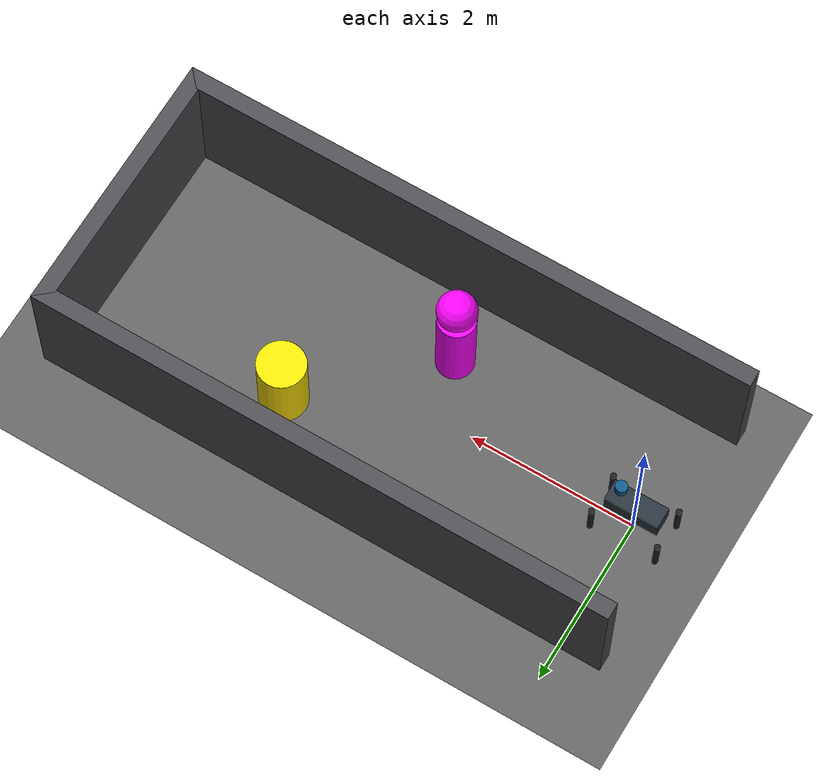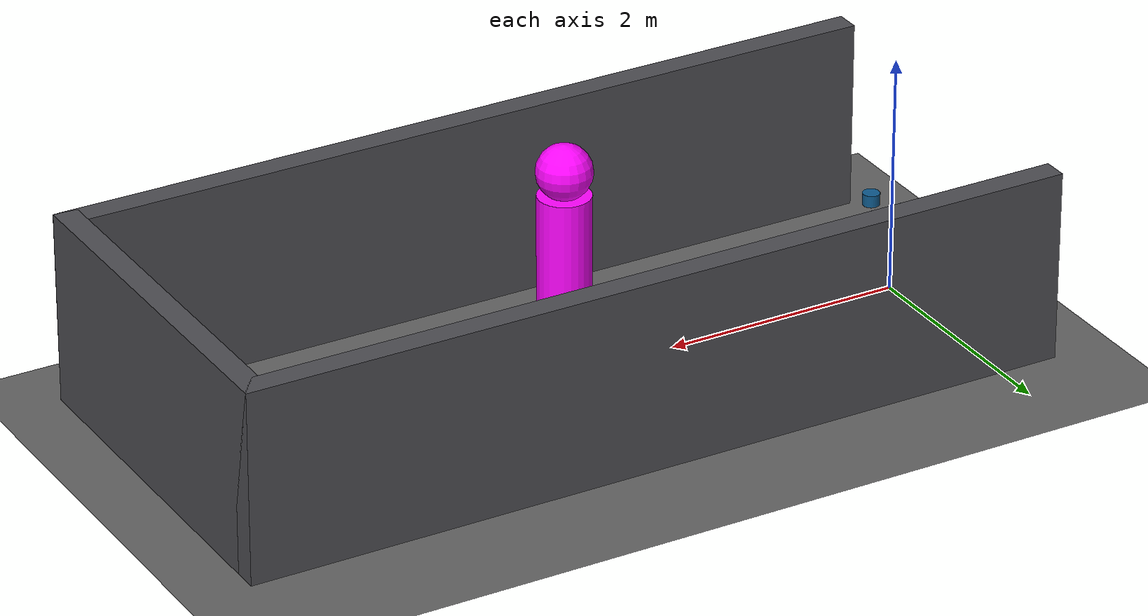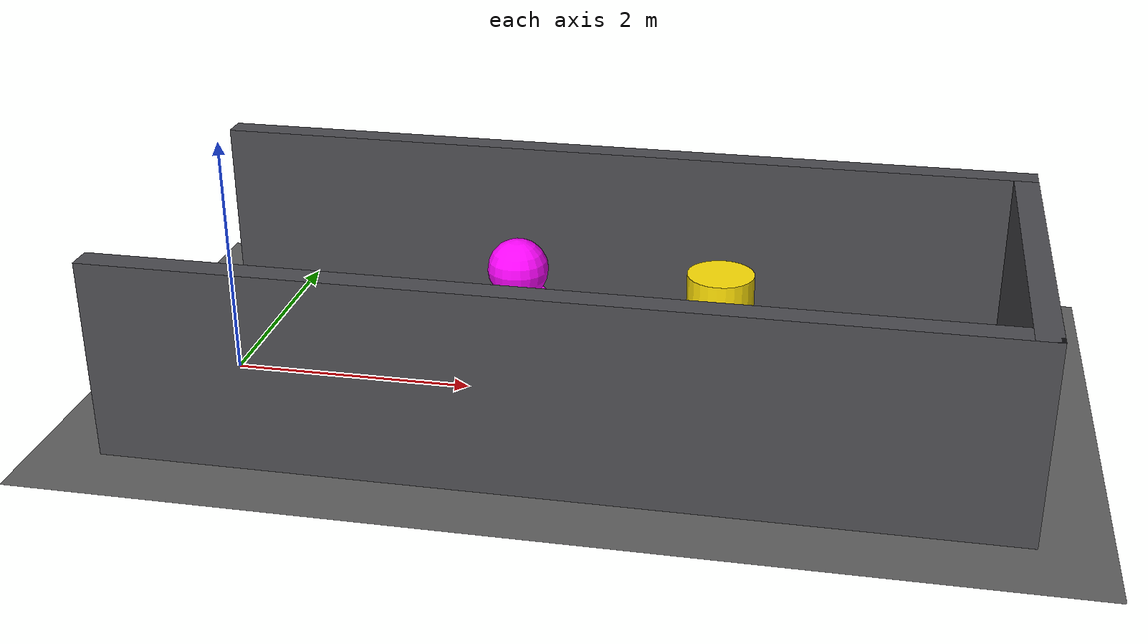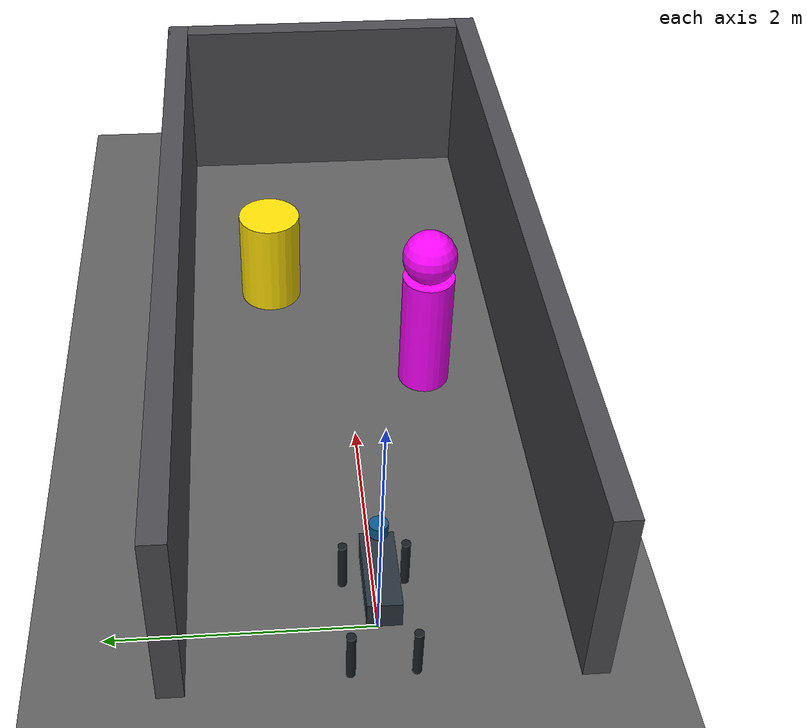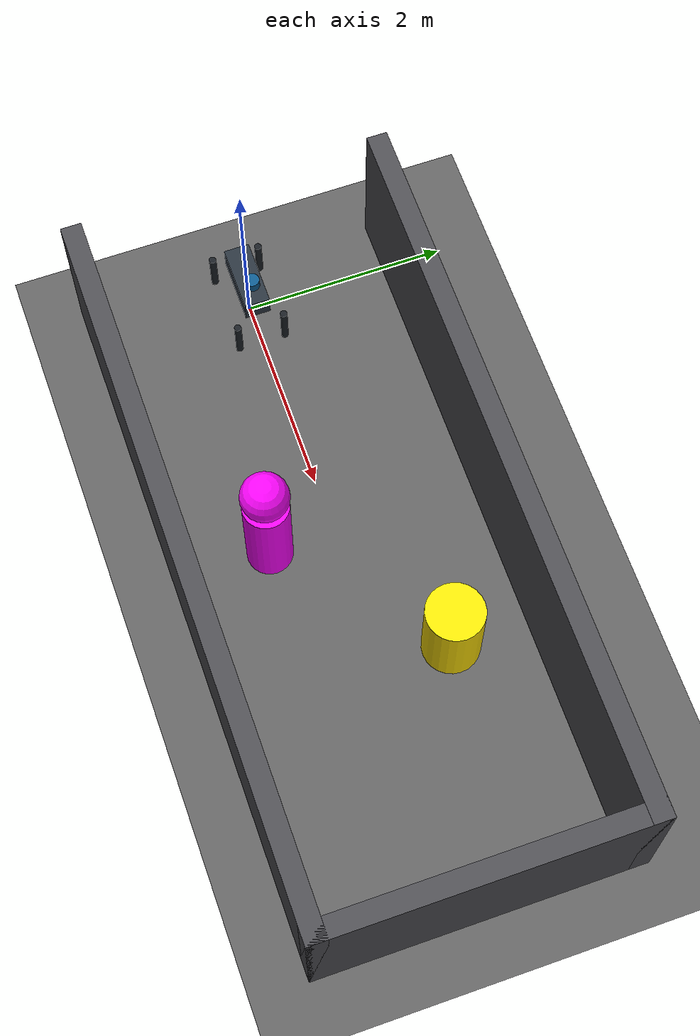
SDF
<?xml version="1.0"?>
<!-- Copyright 2026 Kookmin AI Lab, Apache-2.0 -->
<sdf version="1.8">
  <world name="vision60_disaster_test">
    <physics name="1ms" type="ignored">
      <max_step_size>0.001</max_step_size><real_time_factor>1.0</real_time_factor>
    </physics>
    <plugin filename="ignition-gazebo-physics-system" name="gz::sim::systems::Physics"/>
    <plugin filename="ignition-gazebo-user-commands-system" name="gz::sim::systems::UserCommands"/>
    <plugin filename="ignition-gazebo-scene-broadcaster-system" name="gz::sim::systems::SceneBroadcaster"/>
    <plugin filename="ignition-gazebo-sensors-system" name="gz::sim::systems::Sensors"><render_engine>ogre2</render_engine></plugin>
    <plugin filename="ignition-gazebo-imu-system" name="gz::sim::systems::Imu"/>
    <light type="directional" name="sun">
      <pose>0 0 10 0 0 0</pose><diffuse>0.9 0.9 0.9 1</diffuse>
      <specular>0.2 0.2 0.2 1</specular><direction>-0.5 0.1 -0.9</direction>
    </light>
    <model name="ground_plane">
      <static>true</static><link name="ground">
        <collision name="collision"><geometry><plane><normal>0 0 1</normal><size>30 30</size></plane></geometry></collision>
        <visual name="visual"><geometry><plane><normal>0 0 1</normal><size>30 30</size></plane></geometry><material><diffuse>0.38 0.38 0.38 1</diffuse></material></visual>
      </link>
    </model>
    <model name="corridor_left"><static>true</static><pose>3.0 1.5 0.8 0 0 0</pose><link name="wall">
      <collision name="collision"><geometry><box><size>7.0 0.20 1.6</size></box></geometry></collision>
      <visual name="visual"><geometry><box><size>7.0 0.20 1.6</size></box></geometry><material><diffuse>0.30 0.30 0.32 1</diffuse></material></visual>
    </link></model>
    <model name="corridor_right"><static>true</static><pose>3.0 -1.5 0.8 0 0 0</pose><link name="wall">
      <collision name="collision"><geometry><box><size>7.0 0.20 1.6</size></box></geometry></collision>
      <visual name="visual"><geometry><box><size>7.0 0.20 1.6</size></box></geometry><material><diffuse>0.30 0.30 0.32 1</diffuse></material></visual>
    </link></model>
    <model name="victim_target">
      <static>true</static><pose>2.6 -0.65 0 0 0 0</pose><link name="target">
        <collision name="body_collision"><pose>0 0 0.65 0 0 0</pose><geometry><cylinder><radius>0.22</radius><length>1.10</length></cylinder></geometry></collision>
        <visual name="body_visual"><pose>0 0 0.65 0 0 0</pose><geometry><cylinder><radius>0.22</radius><length>1.10</length></cylinder></geometry><material><ambient>1 0.02 1 1</ambient><diffuse>1 0.02 1 1</diffuse></material></visual>
        <collision name="head_collision"><pose>0 0 1.40 0 0 0</pose><geometry><sphere><radius>0.23</radius></sphere></geometry></collision>
        <visual name="head_visual"><pose>0 0 1.40 0 0 0</pose><geometry><sphere><radius>0.23</radius></sphere></geometry><material><ambient>1 0.02 1 1</ambient><diffuse>1 0.02 1 1</diffuse></material></visual>
      </link>
    </model>
    <model name="hazard_target">
      <static>true</static><pose>4.0 0.65 0.45 0 0 0</pose><link name="target">
        <collision name="collision"><geometry><cylinder><radius>0.28</radius><length>0.90</length></cylinder></geometry></collision>
        <visual name="visual"><geometry><cylinder><radius>0.28</radius><length>0.90</length></cylinder></geometry><material><ambient>1 0.88 0.02 1</ambient><diffuse>1 0.88 0.02 1</diffuse></material></visual>
      </link>
    </model>
    <model name="end_wall"><static>true</static><pose>6.4 0 0.8 0 0 0</pose><link name="wall">
      <collision name="collision"><geometry><box><size>0.20 3.2 1.6</size></box></geometry></collision>
      <visual name="visual"><geometry><box><size>0.20 3.2 1.6</size></box></geometry><material><diffuse>0.30 0.30 0.32 1</diffuse></material></visual>
    </link></model>
    <include><uri>model://vision60</uri><name>vision60</name></include>
  </world>
</sdf>

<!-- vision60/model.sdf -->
<!-- Copyright 2026 Kookmin AI Lab, Apache-2.0 -->
<sdf version="1.8">
  <model name="vision60">
    <pose>0 0 0.55 0 0 0</pose>
    <static>false</static>
    <self_collide>false</self_collide>
    <link name="base_link">
      <inertial>
        <mass>51.0</mass>
        <inertia>
          <ixx>0.471325</ixx>
          <iyy>2.001325</iyy>
          <izz>2.061250</izz>
        </inertia>
      </inertial>

      <collision name="body_collision">
        <geometry><box><size>0.65 0.25 0.22</size></box></geometry>
        <surface>
          <friction><ode><mu>1.2</mu><mu2>1.2</mu2></ode></friction>
        </surface>
      </collision>
      <visual name="body_visual">
        <geometry><box><size>0.65 0.25 0.22</size></box></geometry>
        <material>
          <ambient>0.08 0.10 0.12 1</ambient>
          <diffuse>0.16 0.20 0.24 1</diffuse>
          <specular>0.35 0.35 0.35 1</specular>
        </material>
      </visual>

      <collision name="front_left_leg_collision">
        <pose>0.40 0.235 -0.32 0 0 0</pose>
        <geometry><cylinder><radius>0.035</radius><length>0.42</length></cylinder></geometry>
      </collision>
      <visual name="front_left_leg_visual">
        <pose>0.40 0.235 -0.32 0 0 0</pose>
        <geometry><cylinder><radius>0.035</radius><length>0.42</length></cylinder></geometry>
        <material><diffuse>0.10 0.12 0.14 1</diffuse></material>
      </visual>
      <collision name="front_right_leg_collision">
        <pose>0.40 -0.235 -0.32 0 0 0</pose>
        <geometry><cylinder><radius>0.035</radius><length>0.42</length></cylinder></geometry>
      </collision>
      <visual name="front_right_leg_visual">
        <pose>0.40 -0.235 -0.32 0 0 0</pose>
        <geometry><cylinder><radius>0.035</radius><length>0.42</length></cylinder></geometry>
        <material><diffuse>0.10 0.12 0.14 1</diffuse></material>
      </visual>
      <collision name="rear_left_leg_collision">
        <pose>-0.40 0.235 -0.32 0 0 0</pose>
        <geometry><cylinder><radius>0.035</radius><length>0.42</length></cylinder></geometry>
      </collision>
      <visual name="rear_left_leg_visual">
        <pose>-0.40 0.235 -0.32 0 0 0</pose>
        <geometry><cylinder><radius>0.035</radius><length>0.42</length></cylinder></geometry>
        <material><diffuse>0.10 0.12 0.14 1</diffuse></material>
      </visual>
      <collision name="rear_right_leg_collision">
        <pose>-0.40 -0.235 -0.32 0 0 0</pose>
        <geometry><cylinder><radius>0.035</radius><length>0.42</length></cylinder></geometry>
      </collision>
      <visual name="rear_right_leg_visual">
        <pose>-0.40 -0.235 -0.32 0 0 0</pose>
        <geometry><cylinder><radius>0.035</radius><length>0.42</length></cylinder></geometry>
        <material><diffuse>0.10 0.12 0.14 1</diffuse></material>
      </visual>

      <collision name="front_left_foot_collision">
        <pose>0.40 0.235 -0.53 0 0 0</pose>
        <geometry><sphere><radius>0.05</radius></sphere></geometry>
        <surface><friction><ode><mu>1.4</mu><mu2>1.4</mu2></ode></friction></surface>
      </collision>
      <collision name="front_right_foot_collision">
        <pose>0.40 -0.235 -0.53 0 0 0</pose>
        <geometry><sphere><radius>0.05</radius></sphere></geometry>
        <surface><friction><ode><mu>1.4</mu><mu2>1.4</mu2></ode></friction></surface>
      </collision>
      <collision name="rear_left_foot_collision">
        <pose>-0.40 0.235 -0.53 0 0 0</pose>
        <geometry><sphere><radius>0.05</radius></sphere></geometry>
        <surface><friction><ode><mu>1.4</mu><mu2>1.4</mu2></ode></friction></surface>
      </collision>
      <collision name="rear_right_foot_collision">
        <pose>-0.40 -0.235 -0.53 0 0 0</pose>
        <geometry><sphere><radius>0.05</radius></sphere></geometry>
        <surface><friction><ode><mu>1.4</mu><mu2>1.4</mu2></ode></friction></surface>
      </collision>

      <visual name="sensor_head_visual">
        <pose>0.20 0 0.30 0 0 0</pose>
        <geometry><cylinder><radius>0.07</radius><length>0.10</length></cylinder></geometry>
        <material><diffuse>0.05 0.35 0.55 1</diffuse></material>
      </visual>

      <sensor name="imu" type="imu">
        <always_on>true</always_on>
        <update_rate>100</update_rate>
        <topic>vision60/sim/imu</topic>
        <gz_frame_id>base_link</gz_frame_id>
        <imu>
          <angular_velocity>
            <x><noise type="gaussian"><mean>0</mean><stddev>0.0002</stddev></noise></x>
            <y><noise type="gaussian"><mean>0</mean><stddev>0.0002</stddev></noise></y>
            <z><noise type="gaussian"><mean>0</mean><stddev>0.0002</stddev></noise></z>
          </angular_velocity>
          <linear_acceleration>
            <x><noise type="gaussian"><mean>0</mean><stddev>0.002</stddev></noise></x>
            <y><noise type="gaussian"><mean>0</mean><stddev>0.002</stddev></noise></y>
            <z><noise type="gaussian"><mean>0</mean><stddev>0.002</stddev></noise></z>
          </linear_acceleration>
        </imu>
      </sensor>

      <sensor name="ouster" type="gpu_lidar">
        <pose>0.20 0 0.45 0 0 0</pose>
        <always_on>true</always_on>
        <update_rate>10</update_rate>
        <topic>ouster</topic>
        <gz_frame_id>os_sensor</gz_frame_id>
        <lidar>
          <scan>
            <horizontal>
              <samples>640</samples><resolution>1</resolution>
              <min_angle>-3.14159265</min_angle><max_angle>3.14159265</max_angle>
            </horizontal>
            <vertical>
              <samples>16</samples><resolution>1</resolution>
              <min_angle>-0.261799</min_angle><max_angle>0.261799</max_angle>
            </vertical>
          </scan>
          <range><min>0.10</min><max>30.0</max><resolution>0.01</resolution></range>
          <noise><type>gaussian</type><mean>0</mean><stddev>0.01</stddev></noise>
        </lidar>
      </sensor>

      <sensor name="front_camera" type="camera">
        <pose>0.33 0 0.35 0 0 0</pose>
        <always_on>true</always_on>
        <update_rate>10</update_rate>
        <topic>camera/image_raw</topic>
        <gz_frame_id>camera_optical</gz_frame_id>
        <camera name="front_camera">
          <camera_info_topic>camera/camera_info</camera_info_topic>
          <horizontal_fov>1.256637</horizontal_fov>
          <image><width>160</width><height>120</height><format>R8G8B8</format></image>
          <clip><near>0.10</near><far>30.0</far></clip>
          <noise><type>gaussian</type><mean>0</mean><stddev>0.003</stddev></noise>
        </camera>
      </sensor>
    </link>

    <plugin filename="ignition-gazebo-pose-publisher-system"
            name="gz::sim::systems::PosePublisher">
      <publish_model_pose>true</publish_model_pose>
      <publish_link_pose>true</publish_link_pose>
      <publish_sensor_pose>true</publish_sensor_pose>
      <use_pose_vector_msg>true</use_pose_vector_msg>
      <update_frequency>30</update_frequency>
    </plugin>
    <plugin filename="ignition-gazebo-velocity-control-system"
            name="gz::sim::systems::VelocityControl">
      <topic>/model/vision60/cmd_vel</topic>
    </plugin>
  </model>
</sdf>
